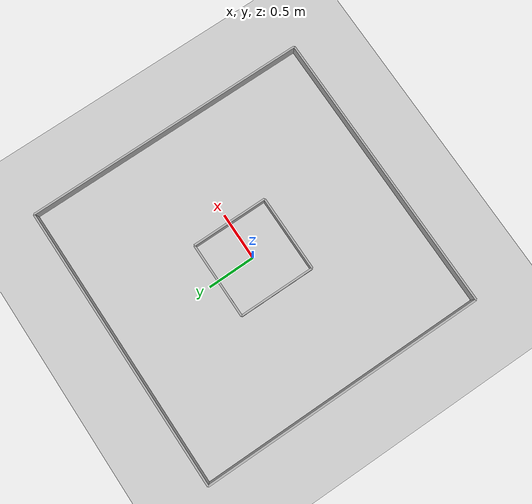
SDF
<sdf version='1.10'>
  <world name='empty'>
    <physics name='1ms' type='ignored'>
      <max_step_size>0.001</max_step_size>
      <real_time_factor>1</real_time_factor>
      <real_time_update_rate>1000</real_time_update_rate>
    </physics>
    <plugin name='gz::sim::systems::Physics' filename='gz-sim-physics-system'/>
    <plugin name='gz::sim::systems::UserCommands' filename='gz-sim-user-commands-system'/>
    <plugin name='gz::sim::systems::SceneBroadcaster' filename='gz-sim-scene-broadcaster-system'/>
    <plugin name='gz::sim::systems::Contact' filename='gz-sim-contact-system'/>
    <gravity>0 0 -9.8000000000000007</gravity>
    <magnetic_field>5.5644999999999998e-06 2.2875799999999999e-05 -4.2388400000000002e-05</magnetic_field>
    <atmosphere type='adiabatic'/>
    <scene>
      <ambient>0.400000006 0.400000006 0.400000006 1</ambient>
      <background>0.699999988 0.699999988 0.699999988 1</background>
      <shadows>true</shadows>
    </scene>
    <model name='ground_plane'>
      <static>true</static>
      <link name='link'>
        <collision name='collision'>
          <geometry>
            <plane>
              <normal>0 0 1</normal>
              <size>100 100</size>
            </plane>
          </geometry>
          <surface>
            <friction>
              <ode/>
            </friction>
            <bounce/>
            <contact/>
          </surface>
        </collision>
        <visual name='visual'>
          <geometry>
            <plane>
              <normal>0 0 1</normal>
              <size>100 100</size>
            </plane>
          </geometry>
          <material>
            <ambient>0.800000012 0.800000012 0.800000012 1</ambient>
            <diffuse>0.800000012 0.800000012 0.800000012 1</diffuse>
            <specular>0.800000012 0.800000012 0.800000012 1</specular>
          </material>
        </visual>
        <pose>0 0 0 0 0 0</pose>
        <inertial>
          <pose>0 0 0 0 0 0</pose>
          <mass>1</mass>
          <inertia>
            <ixx>1</ixx>
            <ixy>0</ixy>
            <ixz>0</ixz>
            <iyy>1</iyy>
            <iyz>0</iyz>
            <izz>1</izz>
          </inertia>
        </inertial>
        <enable_wind>false</enable_wind>
      </link>
      <pose>0 0 0 0 0 0</pose>
      <self_collide>false</self_collide>
    </model>
    <model name='outer_walls'>
      <static>true</static>
      <pose>0 0 0.05 0 0 0</pose>
      <!-- North Wall -->
      <link name='north_wall'>
        <pose>0 1.5 0 0 0 0</pose>
        <collision name='collision'>
          <geometry>
            <box>
              <size>3.0 0.02 0.12</size>
            </box>
          </geometry>
        </collision>
        <visual name='visual'>
          <geometry>
            <box>
              <size>3.0 0.02 0.12</size>
            </box>
          </geometry>
          <material>
            <ambient>0.7 0.7 0.7 1</ambient>
            <diffuse>0.7 0.7 0.7 1</diffuse>
          </material>
        </visual>
      </link>
      <!-- South Wall -->
      <link name='south_wall'>
        <pose>0 -1.5 0 0 0 0</pose>
        <collision name='collision'>
          <geometry>
            <box>
              <size>3.0 0.02 0.12</size>
            </box>
          </geometry>
        </collision>
        <visual name='visual'>
          <geometry>
            <box>
              <size>3.0 0.02 0.12</size>
            </box>
          </geometry>
          <material>
            <ambient>0.7 0.7 0.7 1</ambient>
            <diffuse>0.7 0.7 0.7 1</diffuse>
          </material>
        </visual>
      </link>
      <!-- East Wall -->
      <link name='east_wall'>
        <pose>1.5 0 0 0 0 1.5708</pose>
        <collision name='collision'>
          <geometry>
            <box>
              <size>3.0 0.02 0.12</size>
            </box>
          </geometry>
        </collision>
        <visual name='visual'>
          <geometry>
            <box>
              <size>3.0 0.02 0.12</size>
            </box>
          </geometry>
          <material>
            <ambient>0.7 0.7 0.7 1</ambient>
            <diffuse>0.7 0.7 0.7 1</diffuse>
          </material>
        </visual>
      </link>
      <!-- West Wall -->
      <link name='west_wall'>
        <pose>-1.5 0 0 0 0 1.5708</pose>
        <collision name='collision'>
          <geometry>
            <box>
              <size>3.0 0.02 0.12</size>
            </box>
          </geometry>
        </collision>
        <visual name='visual'>
          <geometry>
            <box>
              <size>3.0 0.02 0.12</size>
            </box>
          </geometry>
          <material>
            <ambient>0.7 0.7 0.7 1</ambient>
            <diffuse>0.7 0.7 0.7 1</diffuse>
          </material>
        </visual>
      </link>
    </model>

    <!-- Inner Square Walls -->
    <model name='inner_walls'>
      <static>true</static>
      <pose>0 0 0.05 0 0 0</pose>
      <!-- North Wall -->
      <link name='north_wall'>
        <pose>0 0.4 0 0 0 0</pose>
        <collision name='collision'>
          <geometry>
            <box>
              <size>0.8 0.02 0.12</size>
            </box>
          </geometry>
        </collision>
        <visual name='visual'>
          <geometry>
            <box>
              <size>0.8 0.02 0.12</size>
            </box>
          </geometry>
          <material>
            <ambient>0.7 0.7 0.7 1</ambient>
            <diffuse>0.7 0.7 0.7 1</diffuse>
          </material>
        </visual>
      </link>
      <!-- South Wall -->
      <link name='south_wall'>
        <pose>0 -0.4 0 0 0 0</pose>
        <collision name='collision'>
          <geometry>
            <box>
              <size>0.8 0.02 0.12</size>
            </box>
          </geometry>
        </collision>
        <visual name='visual'>
          <geometry>
            <box>
              <size>0.8 0.02 0.12</size>
            </box>
          </geometry>
          <material>
            <ambient>0.7 0.7 0.7 1</ambient>
            <diffuse>0.7 0.7 0.7 1</diffuse>
          </material>
        </visual>
      </link>
      <!-- East Wall -->
      <link name='east_wall'>
        <pose>0.4 0 0 0 0 1.5708</pose>
        <collision name='collision'>
          <geometry>
            <box>
              <size>0.8 0.02 0.12</size>
            </box>
          </geometry>
        </collision>
        <visual name='visual'>
          <geometry>
            <box>
              <size>0.8 0.02 0.12</size>
            </box>
          </geometry>
          <material>
            <ambient>0.7 0.7 0.7 1</ambient>
            <diffuse>0.7 0.7 0.7 1</diffuse>
          </material>
        </visual>
      </link>
      <!-- West Wall -->
      <link name='west_wall'>
        <pose>-0.4 0 0 0 0 1.5708</pose>
        <collision name='collision'>
          <geometry>
            <box>
              <size>0.8 0.02 0.12</size>
            </box>
          </geometry>
        </collision>
        <visual name='visual'>
          <geometry>
            <box>
              <size>0.8 0.02 0.12</size>
            </box>
          </geometry>
          <material>
            <ambient>0.7 0.7 0.7 1</ambient>
            <diffuse>0.7 0.7 0.7 1</diffuse>
          </material>
        </visual>
      </link>
    </model>

    <light name='sun' type='directional'>
      <pose>0 0 10 0 0 0</pose>
      <cast_shadows>true</cast_shadows>
      <intensity>1</intensity>
      <direction>-0.5 0.10000000000000001 -0.90000000000000002</direction>
      <diffuse>0.800000012 0.800000012 0.800000012 1</diffuse>
      <specular>0.200000003 0.200000003 0.200000003 1</specular>
      <attenuation>
        <range>1000</range>
        <linear>0.02</linear>
        <constant>0.90000000000000002</constant>
        <quadratic>0.001</quadratic>
      </attenuation>
      <spot>
        <inner_angle>0</inner_angle>
        <outer_angle>0</outer_angle>
        <falloff>0</falloff>
      </spot>
    </light>
  </world>
</sdf>
